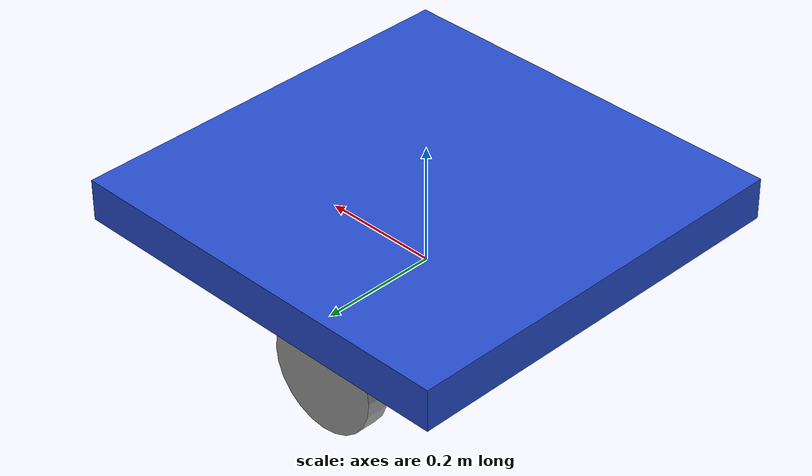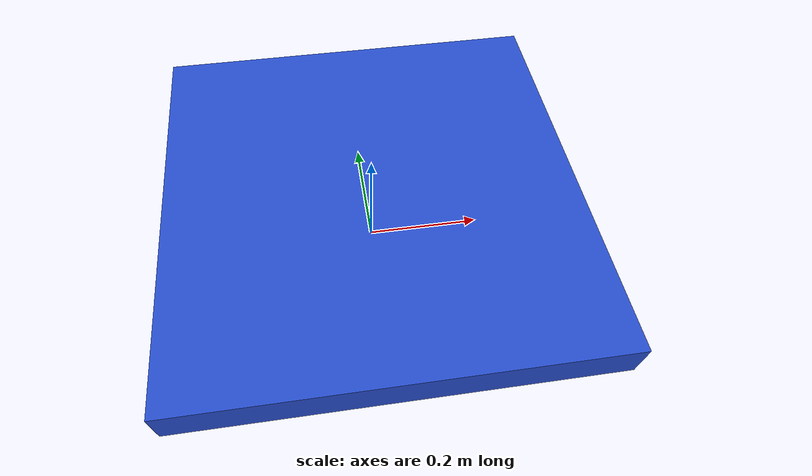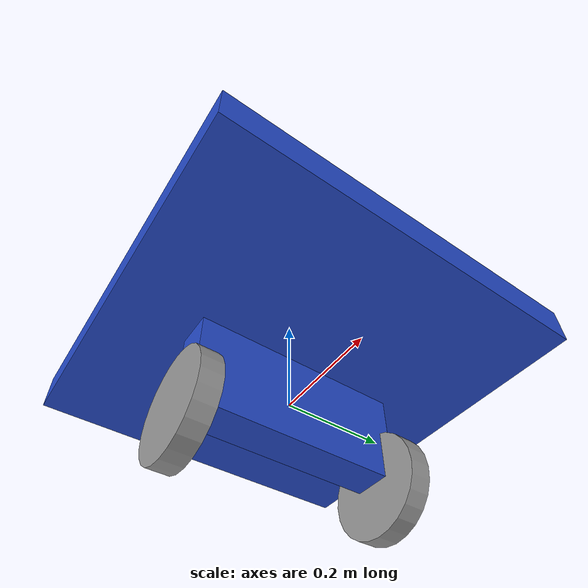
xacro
<?xml version="1.0" ?>
<robot name="dual_motion_robot" xmlns:xacro="http://www.ros.org/wiki/xacro">

  <xacro:include filename="$(find robot_description)/urdf/dual_motion_robot/materials.xacro" />
  <xacro:include filename="$(find robot_description)/urdf/dual_motion_robot/dual_motion_robot.gazebo" />
  <xacro:include filename="$(find robot_description)/urdf/dual_motion_robot/macros.xacro" />
  <xacro:include filename="$(find robot_description)/urdf/dual_motion_robot/dual_motion_robot_transmision.xacro" />

  <link name="link_chassis">
    <!-- pose and inertial -->
    <inertial>
      <mass value="20"/>
      <origin rpy="0 0 0" xyz="0 0 0"/>
      <inertia ixx="0.0395416666667" ixy="0" ixz="0" iyy="0.106208333333" iyz="0" izz="0.106208333333"/>
    </inertial>
    <!-- body -->
    <collision name="collision_chassis">
      <geometry>
        <box size="0.7 0.7 0.07"/>
      </geometry>
    </collision>
    <visual>
      <origin rpy="0 0 0" xyz="0 0 0"/>
      <geometry>
        <box size="0.7 0.7 0.07"/>
      </geometry>
      <material name="blue"/>
    </visual>
  </link>

  <link name="wheel_link">
    <!-- pose and inertial -->
    <pose>0 0 0.1 0 0 0</pose>
    <inertial>
      <mass value="0.001"/>
      <origin rpy="0 0 0" xyz="0 0 0.1"/>
      <inertia ixx="0.0395416666667" ixy="0" ixz="0" iyy="0.106208333333" iyz="0" izz="0.106208333333"/>
    </inertial>
    <!-- body -->
    <collision name="collision_wheel_link">
      <geometry>
        <box size="0.07 0.4 0.2"/>
      </geometry>
    </collision>
    <visual>
      <origin rpy="0 0 0" xyz="0 0 0"/>
      <geometry>
        <box size="0.07 0.4 0.2"/>
      </geometry>
      <material name="blue"/>
    </visual>
  </link>

  <xacro:link_wheel name="link_right_wheel" />
  <xacro:joint_wheel name="wheel_R_joint" child="link_right_wheel" origin_xyz="0 0.20 -0.1" />

  <xacro:link_wheel name="link_left_wheel" />
  <xacro:joint_wheel name="wheel_L_joint" child="link_left_wheel" origin_xyz="0 -0.20 -0.1" />

  <xacro:base_joint name="chassis_pos_joint" child="link_chassis" origin_xyz="0 0 0.11" />

</robot>

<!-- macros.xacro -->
<robot xmlns:xacro="http://www.ros.org/wiki/xacro">
    <xacro:macro name="link_wheel" params="name">
        <link name="${name}">
            <inertial>
              <mass value="5"/>
              <origin rpy="0 1.5707 1.5707" xyz="0 0 0"/>
              <inertia ixx="0.000526666666667" ixy="0" ixz="0" iyy="0.000526666666667" iyz="0" izz="0.001"/>
            </inertial>
            <collision name="link_right_wheel_collision">
              <origin rpy="0 1.5707 1.5707" xyz="0 0 0"/>
              <geometry>
                <cylinder length="0.04" radius="0.1"/>
              </geometry>
            </collision>
            <visual name="${name}_visual">
              <origin rpy="0 1.5707 1.5707" xyz="0 0 0"/>
              <geometry>
                <cylinder length="0.04" radius="0.1"/>
              </geometry>
            </visual>
        </link>
    </xacro:macro>

    <xacro:macro name="joint_wheel" params="name child origin_xyz">
      <joint name="${name}" type="continuous">
        <origin rpy="0 0 0" xyz="${origin_xyz}"/>
        <child link="${child}"/>
        <parent link="wheel_link"/>
        <axis rpy="0 0 0" xyz="0 1 0"/>
        <limit effort="10000" velocity="1000"/>
        <joint_properties damping="1.0" friction="1.0"/>
      </joint>
    </xacro:macro>

    <xacro:macro name="cylinder_inertia" params="mass r l">
      <inertia  ixx="${mass*(3*r*r+l*l)/12}" ixy = "0" ixz = "0"
                iyy="${mass*(3*r*r+l*l)/12}" iyz = "0"
                izz="${mass*(r*r)/2}" />
    </xacro:macro>

    <xacro:macro name="base_joint" params="name child origin_xyz">
      <joint name="${name}" type="fixed">
        <origin rpy="0 0 0" xyz="${origin_xyz}"/>
        <child link="${child}"/>
        <parent link="wheel_link"/>
        <axis rpy="0 0 0" xyz="1 0 0"/>
        <limit effort="10" lower="-0.35" upper="0.35" velocity="0.1" />
      </joint>
    </xacro:macro>

    <xacro:macro name="cylinder_inertia" params="mass r l">
      <inertia  ixx="${mass*(3*r*r+l*l)/12}" ixy = "0" ixz = "0"
                iyy="${mass*(3*r*r+l*l)/12}" iyz = "0"
                izz="${mass*(r*r)/2}" />
    </xacro:macro>
</robot>
